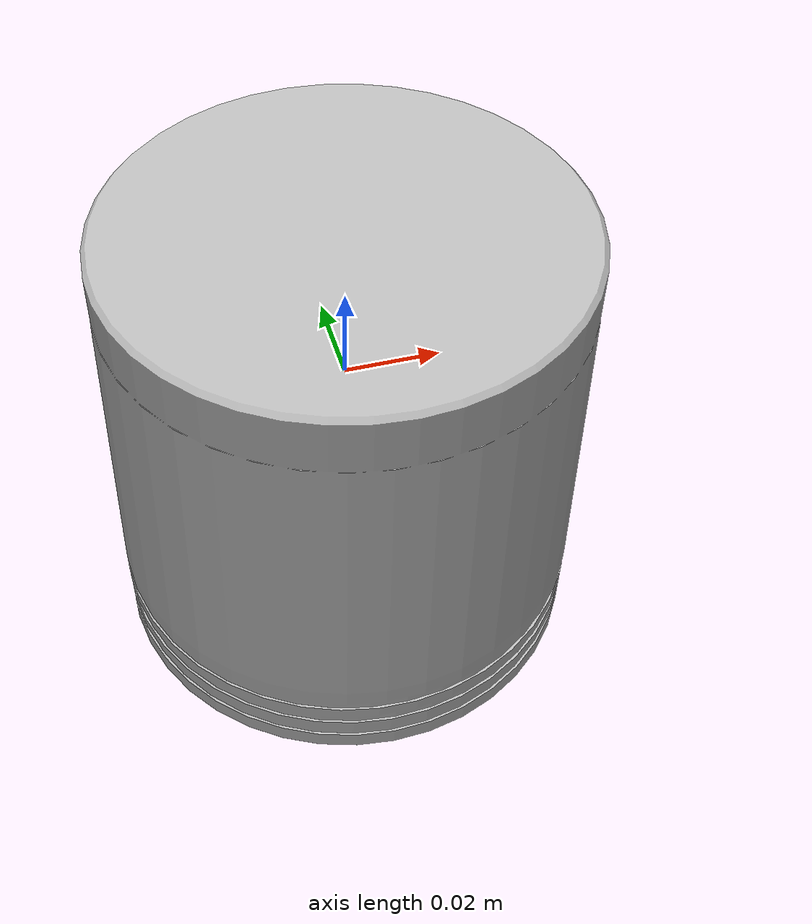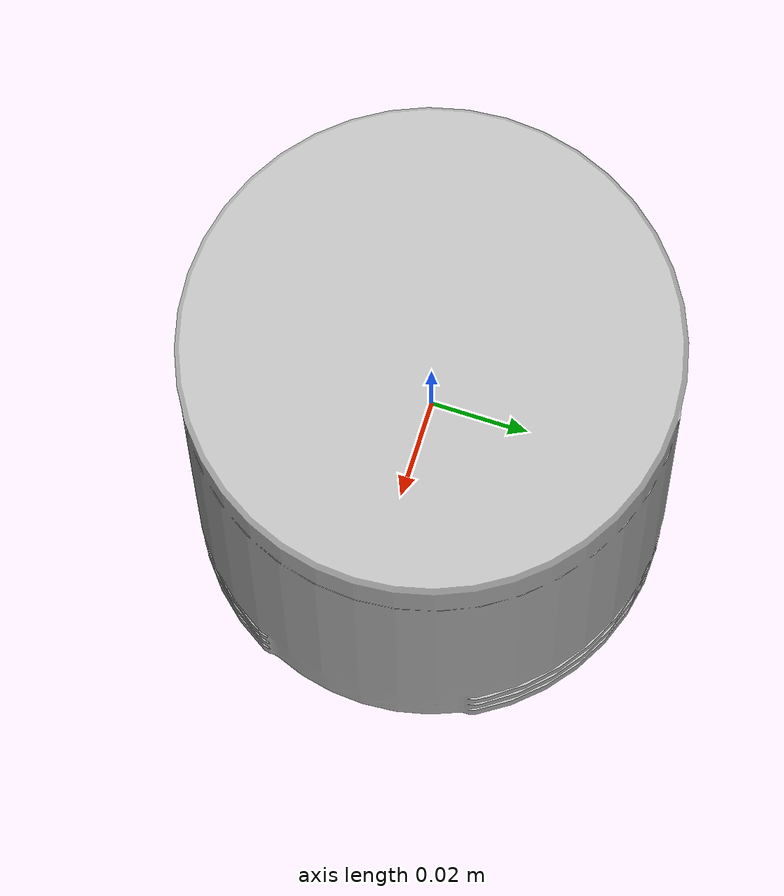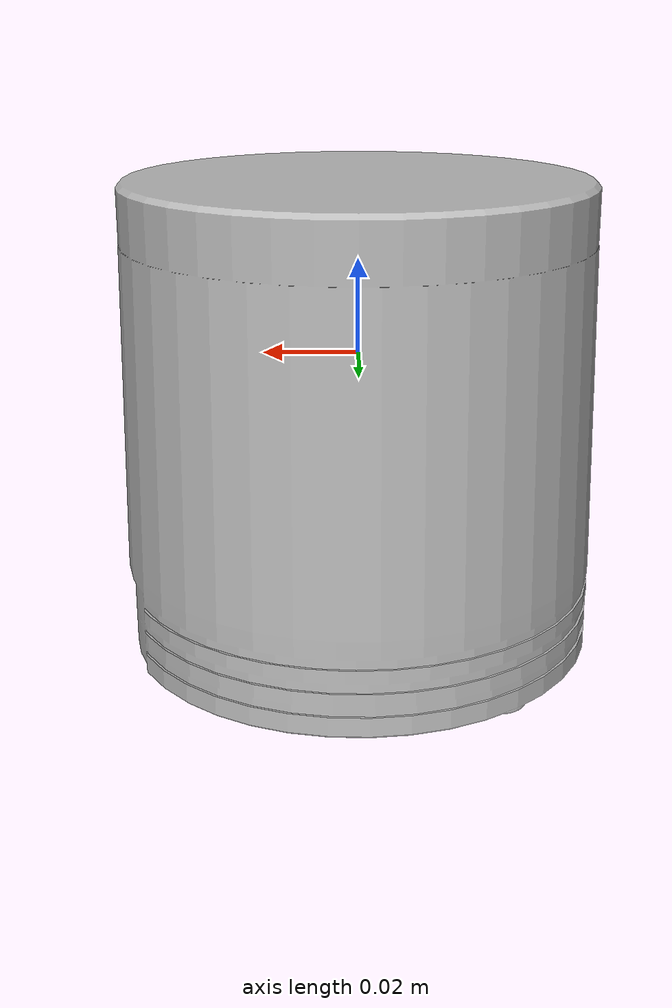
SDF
<?xml version="1.0" ?>
<sdf version="1.5">
  <model name="RS_Helios_5515">
    <static>false</static>
    <link name='base_link'>
      <pose frame=''>0 0 0 0 0 0</pose>
      <inertial>
        <pose frame=''>0 0.037848 -0.0035262 0 0 0</pose>
        <mass>0.9</mass>
        <inertia>
          <ixx>0.0025413</ixx>
          <ixy>0</ixy>
          <ixz>0</ixz>
          <iyy>0.0016941</iyy>
          <iyz>0</iyz>
          <izz>0.0024448</izz>
        </inertia>
      </inertial>
      <collision name='collision'>
        <pose frame=''>0 0 -0.02 0 0 0</pose>
        <geometry>
          <cylinder>
            <length>0.11</length>
            <radius>0.05</radius>
          </cylinder>
        </geometry>
        <max_contacts>10</max_contacts>
      </collision>
      <visual name='visual'>
        <pose frame=''>0 0 0 0 0 0</pose>
        <geometry>
          <mesh>
            <scale>1 1 1</scale>
            <uri>model://RS_Helios_5515/meshes/RS_Helios_frame.STL</uri>
          </mesh>
        </geometry>
      </visual>

      <gravity>1</gravity>
      <velocity_decay/>
      <self_collide>0</self_collide>
      <enable_wind>0</enable_wind>
      <kinematic>0</kinematic>

      <sensor name='RS_Helios' type='ray'><!--gpu_ray-->
        <visualize>false</visualize>
        <pose frame=''>0 0 0 0 0 0</pose>
        <update_rate>10</update_rate>
        <ray>
          <scan>
            <horizontal>
              <samples>900</samples>
              <resolution>1</resolution>
              <min_angle>-1.5708</min_angle>
              <max_angle>1.5708</max_angle>
            </horizontal>
            <vertical>
              <samples>32</samples>
              <resolution>1</resolution>
              <min_angle>-0.959931089</min_angle>
              <max_angle>0.261799</max_angle>
            </vertical>
          </scan>
          <range>
            <min>0.2</min>
            <max>70</max>
            <resolution>0.001</resolution>
          </range>
          <noise>
            <type>gaussian</type>
            <mean>0</mean>
            <stddev>0</stddev>
          </noise>
        </ray>
        <plugin name='gazebo_ros_laser_controller' filename='libgazebo_ros_velodyne_laser.so'>
        <!--libgazebo_ros_velodyne_gpu_laser-->
          <topicName>/lidar_points</topicName>
          <robotNamespace>/</robotNamespace>
          <frameName>rs_helios</frameName>
          <min_range>0.2</min_range>
          <max_range>70.0</max_range>
          <gaussianNoise>0.008</gaussianNoise>
        </plugin>
      </sensor>
    </link>
  </model>
</sdf>
